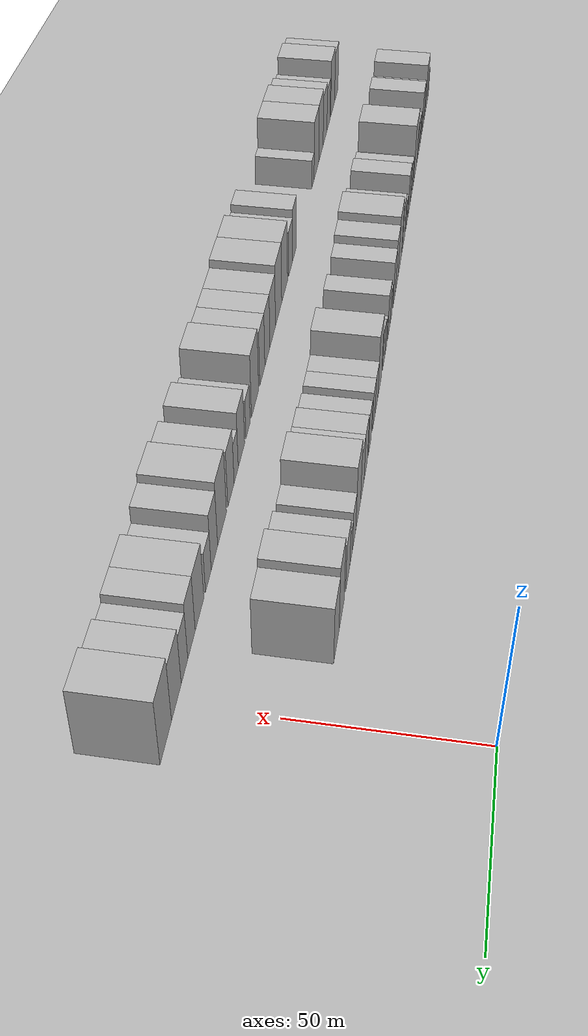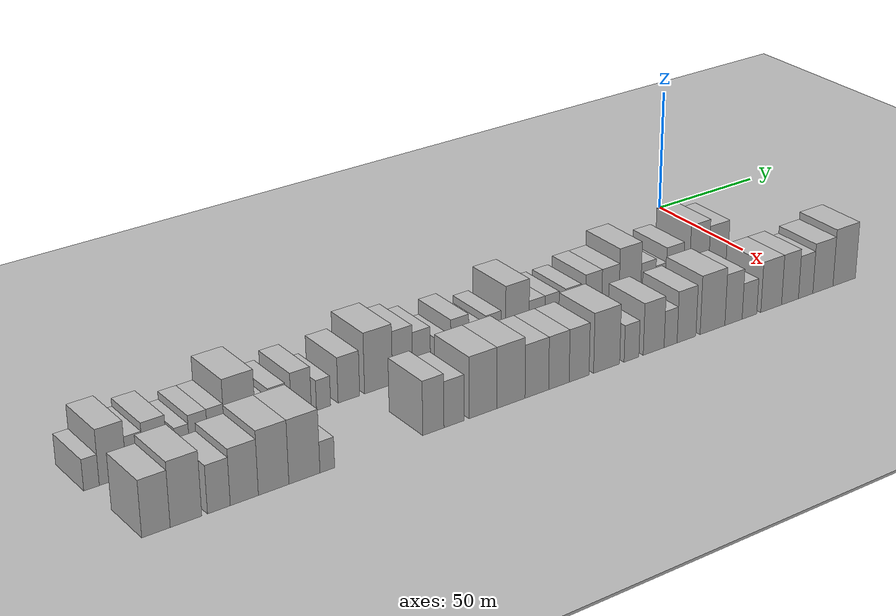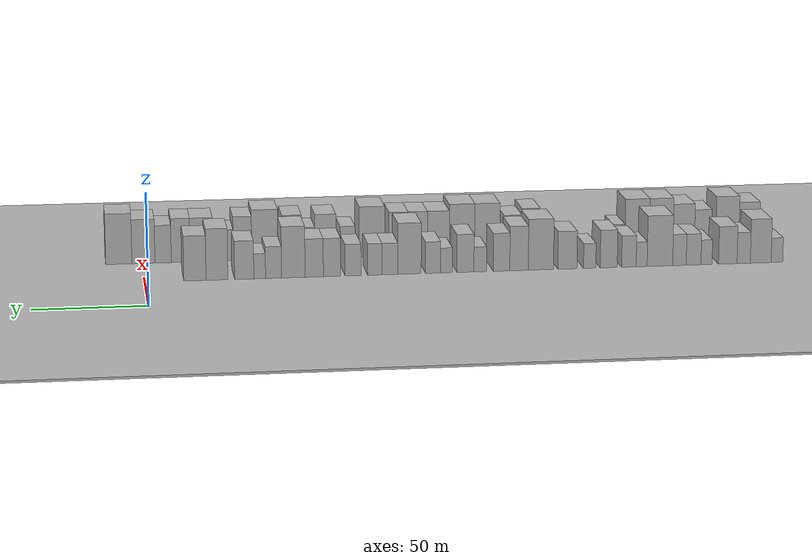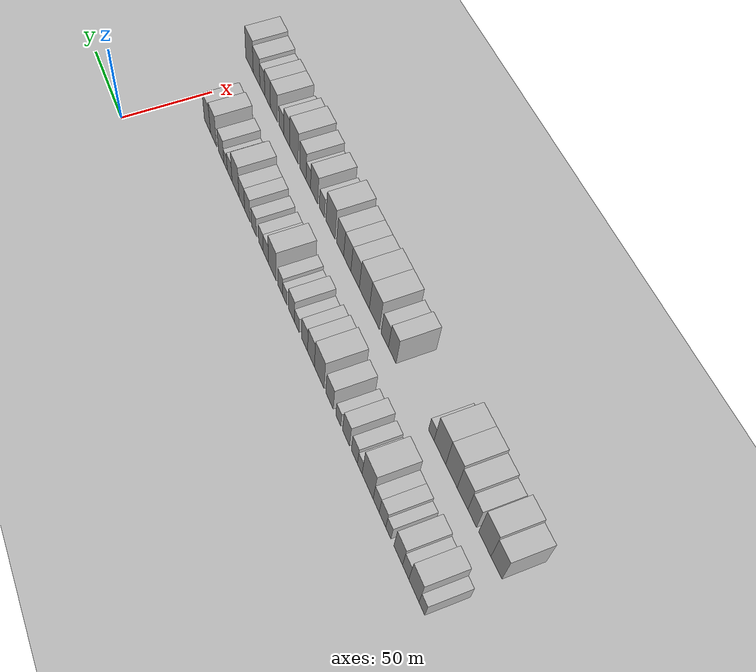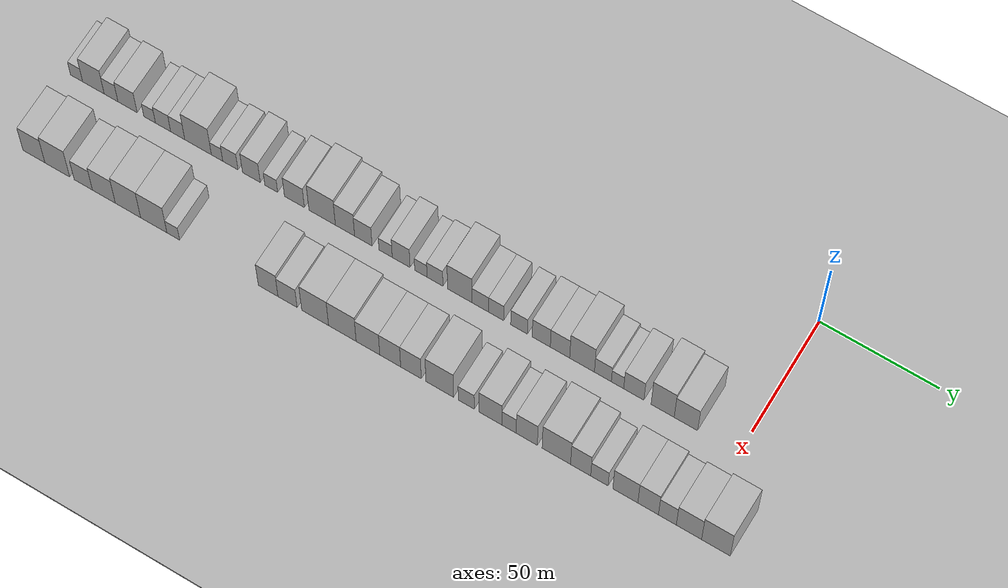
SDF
<sdf version="1.6">
 <world name="default">
  <include><name>ground_plane_1</name><uri>model://HANNAS_ground_plane</uri></include>
  <include>
   <name>ground_plane_2</name>
   <uri>model://HANNAS_ground_plane</uri>
   <pose>100 0 0  0 0 0</pose>
  </include>
  <model name="building_1">
   <static>1</static>
   <pose>50.0000 -287.2695 0 0.000000 0.000000 0.000000</pose>
   <link name="link">
    <pose>0 0 6.00 0 0 0</pose>
    <collision name="collision"><geometry><box><size>20.0000 5.4610 12.0000</size></box></geometry></collision>
    <visual name="visual">
     <cast_shadows>0</cast_shadows>
     <geometry><box><size>20.0000 5.4610 12.0000</size></box></geometry>
     <material>
      <script>
       <uri>model://HANNAS_wall/materials/scripts</uri>
       <uri>model://HANNAS_wall/materials/textures</uri>
       <name>vrc/HANNAS_wall</name>
      </script>
     </material>
    </visual>
   </link>
  </model>
  <model name="building_2">
   <static>1</static>
   <pose>50.0000 -279.6769 0 0.000000 0.000000 0.000000</pose>
   <link name="link">
    <pose>0 0 10.50 0 0 0</pose>
    <collision name="collision"><geometry><box><size>20.0000 9.7242 21.0000</size></box></geometry></collision>
    <visual name="visual">
     <cast_shadows>0</cast_shadows>
     <geometry><box><size>20.0000 9.7242 21.0000</size></box></geometry>
     <material>
      <script>
       <uri>model://HANNAS_wall/materials/scripts</uri>
       <uri>model://HANNAS_wall/materials/textures</uri>
       <name>vrc/HANNAS_wall</name>
      </script>
     </material>
    </visual>
   </link>
  </model>
  <model name="building_3">
   <static>1</static>
   <pose>50.0000 -271.7212 0 0.000000 0.000000 0.000000</pose>
   <link name="link">
    <pose>0 0 7.50 0 0 0</pose>
    <collision name="collision"><geometry><box><size>20.0000 6.1871 15.0000</size></box></geometry></collision>
    <visual name="visual">
     <cast_shadows>0</cast_shadows>
     <geometry><box><size>20.0000 6.1871 15.0000</size></box></geometry>
     <material>
      <script>
       <uri>model://HANNAS_wall/materials/scripts</uri>
       <uri>model://HANNAS_wall/materials/textures</uri>
       <name>vrc/HANNAS_wall</name>
      </script>
     </material>
    </visual>
   </link>
  </model>
  <model name="building_4">
   <static>1</static>
   <pose>50.0000 -264.3217 0 0.000000 0.000000 0.000000</pose>
   <link name="link">
    <pose>0 0 9.00 0 0 0</pose>
    <collision name="collision"><geometry><box><size>20.0000 8.6118 18.0000</size></box></geometry></collision>
    <visual name="visual">
     <cast_shadows>0</cast_shadows>
     <geometry><box><size>20.0000 8.6118 18.0000</size></box></geometry>
     <material>
      <script>
       <uri>model://HANNAS_wall/materials/scripts</uri>
       <uri>model://HANNAS_wall/materials/textures</uri>
       <name>vrc/HANNAS_wall</name>
      </script>
     </material>
    </visual>
   </link>
  </model>
  <model name="building_5">
   <static>1</static>
   <pose>50.0000 -254.4068 0 0.000000 0.000000 0.000000</pose>
   <link name="link">
    <pose>0 0 6.00 0 0 0</pose>
    <collision name="collision"><geometry><box><size>20.0000 5.2180 12.0000</size></box></geometry></collision>
    <visual name="visual">
     <cast_shadows>0</cast_shadows>
     <geometry><box><size>20.0000 5.2180 12.0000</size></box></geometry>
     <material>
      <script>
       <uri>model://HANNAS_wall/materials/scripts</uri>
       <uri>model://HANNAS_wall/materials/textures</uri>
       <name>vrc/HANNAS_wall</name>
      </script>
     </material>
    </visual>
   </link>
  </model>
  <model name="building_6">
   <static>1</static>
   <pose>50.0000 -248.3889 0 0.000000 0.000000 0.000000</pose>
   <link name="link">
    <pose>0 0 7.50 0 0 0</pose>
    <collision name="collision"><geometry><box><size>20.0000 6.8179 15.0000</size></box></geometry></collision>
    <visual name="visual">
     <cast_shadows>0</cast_shadows>
     <geometry><box><size>20.0000 6.8179 15.0000</size></box></geometry>
     <material>
      <script>
       <uri>model://HANNAS_wall/materials/scripts</uri>
       <uri>model://HANNAS_wall/materials/textures</uri>
       <name>vrc/HANNAS_wall</name>
      </script>
     </material>
    </visual>
   </link>
  </model>
  <model name="building_7">
   <static>1</static>
   <pose>50.0000 -241.8399 0 0.000000 0.000000 0.000000</pose>
   <link name="link">
    <pose>0 0 7.50 0 0 0</pose>
    <collision name="collision"><geometry><box><size>20.0000 6.2800 15.0000</size></box></geometry></collision>
    <visual name="visual">
     <cast_shadows>0</cast_shadows>
     <geometry><box><size>20.0000 6.2800 15.0000</size></box></geometry>
     <material>
      <script>
       <uri>model://HANNAS_wall/materials/scripts</uri>
       <uri>model://HANNAS_wall/materials/textures</uri>
       <name>vrc/HANNAS_wall</name>
      </script>
     </material>
    </visual>
   </link>
  </model>
  <model name="building_8">
   <static>1</static>
   <pose>50.0000 -232.7766 0 0.000000 0.000000 0.000000</pose>
   <link name="link">
    <pose>0 0 12.00 0 0 0</pose>
    <collision name="collision"><geometry><box><size>20.0000 11.8468 24.0000</size></box></geometry></collision>
    <visual name="visual">
     <cast_shadows>0</cast_shadows>
     <geometry><box><size>20.0000 11.8468 24.0000</size></box></geometry>
     <material>
      <script>
       <uri>model://HANNAS_wall/materials/scripts</uri>
       <uri>model://HANNAS_wall/materials/textures</uri>
       <name>vrc/HANNAS_wall</name>
      </script>
     </material>
    </visual>
   </link>
  </model>
  <model name="building_9">
   <static>1</static>
   <pose>50.0000 -224.3368 0 0.000000 0.000000 0.000000</pose>
   <link name="link">
    <pose>0 0 6.00 0 0 0</pose>
    <collision name="collision"><geometry><box><size>20.0000 5.0327 12.0000</size></box></geometry></collision>
    <visual name="visual">
     <cast_shadows>0</cast_shadows>
     <geometry><box><size>20.0000 5.0327 12.0000</size></box></geometry>
     <material>
      <script>
       <uri>model://HANNAS_wall/materials/scripts</uri>
       <uri>model://HANNAS_wall/materials/textures</uri>
       <name>vrc/HANNAS_wall</name>
      </script>
     </material>
    </visual>
   </link>
  </model>
  <model name="building_10">
   <static>1</static>
   <pose>50.0000 -218.4319 0 0.000000 0.000000 0.000000</pose>
   <link name="link">
    <pose>0 0 7.50 0 0 0</pose>
    <collision name="collision"><geometry><box><size>20.0000 6.7773 15.0000</size></box></geometry></collision>
    <visual name="visual">
     <cast_shadows>0</cast_shadows>
     <geometry><box><size>20.0000 6.7773 15.0000</size></box></geometry>
     <material>
      <script>
       <uri>model://HANNAS_wall/materials/scripts</uri>
       <uri>model://HANNAS_wall/materials/textures</uri>
       <name>vrc/HANNAS_wall</name>
      </script>
     </material>
    </visual>
   </link>
  </model>
  <model name="building_11">
   <static>1</static>
   <pose>50.0000 -209.1090 0 0.000000 0.000000 0.000000</pose>
   <link name="link">
    <pose>0 0 9.00 0 0 0</pose>
    <collision name="collision"><geometry><box><size>20.0000 7.8686 18.0000</size></box></geometry></collision>
    <visual name="visual">
     <cast_shadows>0</cast_shadows>
     <geometry><box><size>20.0000 7.8686 18.0000</size></box></geometry>
     <material>
      <script>
       <uri>model://HANNAS_wall/materials/scripts</uri>
       <uri>model://HANNAS_wall/materials/textures</uri>
       <name>vrc/HANNAS_wall</name>
      </script>
     </material>
    </visual>
   </link>
  </model>
  <model name="building_12">
   <static>1</static>
   <pose>50.0000 -200.3443 0 0.000000 0.000000 0.000000</pose>
   <link name="link">
    <pose>0 0 6.00 0 0 0</pose>
    <collision name="collision"><geometry><box><size>20.0000 5.6607 12.0000</size></box></geometry></collision>
    <visual name="visual">
     <cast_shadows>0</cast_shadows>
     <geometry><box><size>20.0000 5.6607 12.0000</size></box></geometry>
     <material>
      <script>
       <uri>model://HANNAS_wall/materials/scripts</uri>
       <uri>model://HANNAS_wall/materials/textures</uri>
       <name>vrc/HANNAS_wall</name>
      </script>
     </material>
    </visual>
   </link>
  </model>
  <model name="building_13">
   <static>1</static>
   <pose>50.0000 -190.1287 0 0.000000 0.000000 0.000000</pose>
   <link name="link">
    <pose>0 0 9.00 0 0 0</pose>
    <collision name="collision"><geometry><box><size>20.0000 8.7705 18.0000</size></box></geometry></collision>
    <visual name="visual">
     <cast_shadows>0</cast_shadows>
     <geometry><box><size>20.0000 8.7705 18.0000</size></box></geometry>
     <material>
      <script>
       <uri>model://HANNAS_wall/materials/scripts</uri>
       <uri>model://HANNAS_wall/materials/textures</uri>
       <name>vrc/HANNAS_wall</name>
      </script>
     </material>
    </visual>
   </link>
  </model>
  <model name="building_14">
   <static>1</static>
   <pose>50.0000 -177.9583 0 0.000000 0.000000 0.000000</pose>
   <link name="link">
    <pose>0 0 12.00 0 0 0</pose>
    <collision name="collision"><geometry><box><size>20.0000 11.5704 24.0000</size></box></geometry></collision>
    <visual name="visual">
     <cast_shadows>0</cast_shadows>
     <geometry><box><size>20.0000 11.5704 24.0000</size></box></geometry>
     <material>
      <script>
       <uri>model://HANNAS_wall/materials/scripts</uri>
       <uri>model://HANNAS_wall/materials/textures</uri>
       <name>vrc/HANNAS_wall</name>
      </script>
     </material>
    </visual>
   </link>
  </model>
  <model name="building_15">
   <static>1</static>
   <pose>50.0000 -167.9573 0 0.000000 0.000000 0.000000</pose>
   <link name="link">
    <pose>0 0 10.50 0 0 0</pose>
    <collision name="collision"><geometry><box><size>20.0000 8.4315 21.0000</size></box></geometry></collision>
    <visual name="visual">
     <cast_shadows>0</cast_shadows>
     <geometry><box><size>20.0000 8.4315 21.0000</size></box></geometry>
     <material>
      <script>
       <uri>model://HANNAS_wall/materials/scripts</uri>
       <uri>model://HANNAS_wall/materials/textures</uri>
       <name>vrc/HANNAS_wall</name>
      </script>
     </material>
    </visual>
   </link>
  </model>
  <model name="building_16">
   <static>1</static>
   <pose>50.0000 -159.9387 0 0.000000 0.000000 0.000000</pose>
   <link name="link">
    <pose>0 0 9.00 0 0 0</pose>
    <collision name="collision"><geometry><box><size>20.0000 7.6058 18.0000</size></box></geometry></collision>
    <visual name="visual">
     <cast_shadows>0</cast_shadows>
     <geometry><box><size>20.0000 7.6058 18.0000</size></box></geometry>
     <material>
      <script>
       <uri>model://HANNAS_wall/materials/scripts</uri>
       <uri>model://HANNAS_wall/materials/textures</uri>
       <name>vrc/HANNAS_wall</name>
      </script>
     </material>
    </visual>
   </link>
  </model>
  <model name="building_17">
   <static>1</static>
   <pose>50.0000 -150.2463 0 0.000000 0.000000 0.000000</pose>
   <link name="link">
    <pose>0 0 6.00 0 0 0</pose>
    <collision name="collision"><geometry><box><size>20.0000 5.7791 12.0000</size></box></geometry></collision>
    <visual name="visual">
     <cast_shadows>0</cast_shadows>
     <geometry><box><size>20.0000 5.7791 12.0000</size></box></geometry>
     <material>
      <script>
       <uri>model://HANNAS_wall/materials/scripts</uri>
       <uri>model://HANNAS_wall/materials/textures</uri>
       <name>vrc/HANNAS_wall</name>
      </script>
     </material>
    </visual>
   </link>
  </model>
  <model name="building_18">
   <static>1</static>
   <pose>50.0000 -143.4901 0 0.000000 0.000000 0.000000</pose>
   <link name="link">
    <pose>0 0 9.00 0 0 0</pose>
    <collision name="collision"><geometry><box><size>20.0000 7.7331 18.0000</size></box></geometry></collision>
    <visual name="visual">
     <cast_shadows>0</cast_shadows>
     <geometry><box><size>20.0000 7.7331 18.0000</size></box></geometry>
     <material>
      <script>
       <uri>model://HANNAS_wall/materials/scripts</uri>
       <uri>model://HANNAS_wall/materials/textures</uri>
       <name>vrc/HANNAS_wall</name>
      </script>
     </material>
    </visual>
   </link>
  </model>
  <model name="building_19">
   <static>1</static>
   <pose>50.0000 -134.9416 0 0.000000 0.000000 0.000000</pose>
   <link name="link">
    <pose>0 0 6.00 0 0 0</pose>
    <collision name="collision"><geometry><box><size>20.0000 5.3639 12.0000</size></box></geometry></collision>
    <visual name="visual">
     <cast_shadows>0</cast_shadows>
     <geometry><box><size>20.0000 5.3639 12.0000</size></box></geometry>
     <material>
      <script>
       <uri>model://HANNAS_wall/materials/scripts</uri>
       <uri>model://HANNAS_wall/materials/textures</uri>
       <name>vrc/HANNAS_wall</name>
      </script>
     </material>
    </visual>
   </link>
  </model>
  <model name="building_20">
   <static>1</static>
   <pose>50.0000 -128.8248 0 0.000000 0.000000 0.000000</pose>
   <link name="link">
    <pose>0 0 7.50 0 0 0</pose>
    <collision name="collision"><geometry><box><size>20.0000 6.8697 15.0000</size></box></geometry></collision>
    <visual name="visual">
     <cast_shadows>0</cast_shadows>
     <geometry><box><size>20.0000 6.8697 15.0000</size></box></geometry>
     <material>
      <script>
       <uri>model://HANNAS_wall/materials/scripts</uri>
       <uri>model://HANNAS_wall/materials/textures</uri>
       <name>vrc/HANNAS_wall</name>
      </script>
     </material>
    </visual>
   </link>
  </model>
  <model name="building_21">
   <static>1</static>
   <pose>50.0000 -118.1324 0 0.000000 0.000000 0.000000</pose>
   <link name="link">
    <pose>0 0 12.00 0 0 0</pose>
    <collision name="collision"><geometry><box><size>20.0000 10.5152 24.0000</size></box></geometry></collision>
    <visual name="visual">
     <cast_shadows>0</cast_shadows>
     <geometry><box><size>20.0000 10.5152 24.0000</size></box></geometry>
     <material>
      <script>
       <uri>model://HANNAS_wall/materials/scripts</uri>
       <uri>model://HANNAS_wall/materials/textures</uri>
       <name>vrc/HANNAS_wall</name>
      </script>
     </material>
    </visual>
   </link>
  </model>
  <model name="building_22">
   <static>1</static>
   <pose>50.0000 -109.2981 0 0.000000 0.000000 0.000000</pose>
   <link name="link">
    <pose>0 0 7.50 0 0 0</pose>
    <collision name="collision"><geometry><box><size>20.0000 7.1534 15.0000</size></box></geometry></collision>
    <visual name="visual">
     <cast_shadows>0</cast_shadows>
     <geometry><box><size>20.0000 7.1534 15.0000</size></box></geometry>
     <material>
      <script>
       <uri>model://HANNAS_wall/materials/scripts</uri>
       <uri>model://HANNAS_wall/materials/textures</uri>
       <name>vrc/HANNAS_wall</name>
      </script>
     </material>
    </visual>
   </link>
  </model>
  <model name="building_23">
   <static>1</static>
   <pose>50.0000 -102.4852 0 0.000000 0.000000 0.000000</pose>
   <link name="link">
    <pose>0 0 7.50 0 0 0</pose>
    <collision name="collision"><geometry><box><size>20.0000 6.4725 15.0000</size></box></geometry></collision>
    <visual name="visual">
     <cast_shadows>0</cast_shadows>
     <geometry><box><size>20.0000 6.4725 15.0000</size></box></geometry>
     <material>
      <script>
       <uri>model://HANNAS_wall/materials/scripts</uri>
       <uri>model://HANNAS_wall/materials/textures</uri>
       <name>vrc/HANNAS_wall</name>
      </script>
     </material>
    </visual>
   </link>
  </model>
  <model name="building_24">
   <static>1</static>
   <pose>50.0000 -92.6460 0 0.000000 0.000000 0.000000</pose>
   <link name="link">
    <pose>0 0 7.50 0 0 0</pose>
    <collision name="collision"><geometry><box><size>20.0000 7.2058 15.0000</size></box></geometry></collision>
    <visual name="visual">
     <cast_shadows>0</cast_shadows>
     <geometry><box><size>20.0000 7.2058 15.0000</size></box></geometry>
     <material>
      <script>
       <uri>model://HANNAS_wall/materials/scripts</uri>
       <uri>model://HANNAS_wall/materials/textures</uri>
       <name>vrc/HANNAS_wall</name>
      </script>
     </material>
    </visual>
   </link>
  </model>
  <model name="building_25">
   <static>1</static>
   <pose>50.0000 -83.1704 0 0.000000 0.000000 0.000000</pose>
   <link name="link">
    <pose>0 0 9.00 0 0 0</pose>
    <collision name="collision"><geometry><box><size>20.0000 7.7455 18.0000</size></box></geometry></collision>
    <visual name="visual">
     <cast_shadows>0</cast_shadows>
     <geometry><box><size>20.0000 7.7455 18.0000</size></box></geometry>
     <material>
      <script>
       <uri>model://HANNAS_wall/materials/scripts</uri>
       <uri>model://HANNAS_wall/materials/textures</uri>
       <name>vrc/HANNAS_wall</name>
      </script>
     </material>
    </visual>
   </link>
  </model>
  <model name="building_26">
   <static>1</static>
   <pose>50.0000 -75.1725 0 0.000000 0.000000 0.000000</pose>
   <link name="link">
    <pose>0 0 9.00 0 0 0</pose>
    <collision name="collision"><geometry><box><size>20.0000 8.2501 18.0000</size></box></geometry></collision>
    <visual name="visual">
     <cast_shadows>0</cast_shadows>
     <geometry><box><size>20.0000 8.2501 18.0000</size></box></geometry>
     <material>
      <script>
       <uri>model://HANNAS_wall/materials/scripts</uri>
       <uri>model://HANNAS_wall/materials/textures</uri>
       <name>vrc/HANNAS_wall</name>
      </script>
     </material>
    </visual>
   </link>
  </model>
  <model name="building_27">
   <static>1</static>
   <pose>50.0000 -65.7889 0 0.000000 0.000000 0.000000</pose>
   <link name="link">
    <pose>0 0 12.00 0 0 0</pose>
    <collision name="collision"><geometry><box><size>20.0000 10.5172 24.0000</size></box></geometry></collision>
    <visual name="visual">
     <cast_shadows>0</cast_shadows>
     <geometry><box><size>20.0000 10.5172 24.0000</size></box></geometry>
     <material>
      <script>
       <uri>model://HANNAS_wall/materials/scripts</uri>
       <uri>model://HANNAS_wall/materials/textures</uri>
       <name>vrc/HANNAS_wall</name>
      </script>
     </material>
    </visual>
   </link>
  </model>
  <model name="building_28">
   <static>1</static>
   <pose>50.0000 -56.9479 0 0.000000 0.000000 0.000000</pose>
   <link name="link">
    <pose>0 0 7.50 0 0 0</pose>
    <collision name="collision"><geometry><box><size>20.0000 7.1647 15.0000</size></box></geometry></collision>
    <visual name="visual">
     <cast_shadows>0</cast_shadows>
     <geometry><box><size>20.0000 7.1647 15.0000</size></box></geometry>
     <material>
      <script>
       <uri>model://HANNAS_wall/materials/scripts</uri>
       <uri>model://HANNAS_wall/materials/textures</uri>
       <name>vrc/HANNAS_wall</name>
      </script>
     </material>
    </visual>
   </link>
  </model>
  <model name="building_29">
   <static>1</static>
   <pose>50.0000 -50.7540 0 0.000000 0.000000 0.000000</pose>
   <link name="link">
    <pose>0 0 6.00 0 0 0</pose>
    <collision name="collision"><geometry><box><size>20.0000 5.2231 12.0000</size></box></geometry></collision>
    <visual name="visual">
     <cast_shadows>0</cast_shadows>
     <geometry><box><size>20.0000 5.2231 12.0000</size></box></geometry>
     <material>
      <script>
       <uri>model://HANNAS_wall/materials/scripts</uri>
       <uri>model://HANNAS_wall/materials/textures</uri>
       <name>vrc/HANNAS_wall</name>
      </script>
     </material>
    </visual>
   </link>
  </model>
  <model name="building_30">
   <static>1</static>
   <pose>50.0000 -43.8688 0 0.000000 0.000000 0.000000</pose>
   <link name="link">
    <pose>0 0 9.00 0 0 0</pose>
    <collision name="collision"><geometry><box><size>20.0000 8.5474 18.0000</size></box></geometry></collision>
    <visual name="visual">
     <cast_shadows>0</cast_shadows>
     <geometry><box><size>20.0000 8.5474 18.0000</size></box></geometry>
     <material>
      <script>
       <uri>model://HANNAS_wall/materials/scripts</uri>
       <uri>model://HANNAS_wall/materials/textures</uri>
       <name>vrc/HANNAS_wall</name>
      </script>
     </material>
    </visual>
   </link>
  </model>
  <model name="building_31">
   <static>1</static>
   <pose>50.0000 -31.7296 0 0.000000 0.000000 0.000000</pose>
   <link name="link">
    <pose>0 0 12.00 0 0 0</pose>
    <collision name="collision"><geometry><box><size>20.0000 9.7308 24.0000</size></box></geometry></collision>
    <visual name="visual">
     <cast_shadows>0</cast_shadows>
     <geometry><box><size>20.0000 9.7308 24.0000</size></box></geometry>
     <material>
      <script>
       <uri>model://HANNAS_wall/materials/scripts</uri>
       <uri>model://HANNAS_wall/materials/textures</uri>
       <name>vrc/HANNAS_wall</name>
      </script>
     </material>
    </visual>
   </link>
  </model>
  <model name="building_32">
   <static>1</static>
   <pose>50.0000 -21.9422 0 0.000000 0.000000 0.000000</pose>
   <link name="link">
    <pose>0 0 10.50 0 0 0</pose>
    <collision name="collision"><geometry><box><size>20.0000 9.8439 21.0000</size></box></geometry></collision>
    <visual name="visual">
     <cast_shadows>0</cast_shadows>
     <geometry><box><size>20.0000 9.8439 21.0000</size></box></geometry>
     <material>
      <script>
       <uri>model://HANNAS_wall/materials/scripts</uri>
       <uri>model://HANNAS_wall/materials/textures</uri>
       <name>vrc/HANNAS_wall</name>
      </script>
     </material>
    </visual>
   </link>
  </model>
  <model name="building_64">
   <static>1</static>
   <pose>85.0000 -283.0768 0 0.000000 0.000000 0.000000</pose>
   <link name="link">
    <pose>0 0 10.50 0 0 0</pose>
    <collision name="collision"><geometry><box><size>20.0000 9.8464 21.0000</size></box></geometry></collision>
    <visual name="visual">
     <cast_shadows>0</cast_shadows>
     <geometry><box><size>20.0000 9.8464 21.0000</size></box></geometry>
     <material>
      <script>
       <uri>model://HANNAS_wall/materials/scripts</uri>
       <uri>model://HANNAS_wall/materials/textures</uri>
       <name>vrc/HANNAS_wall</name>
      </script>
     </material>
    </visual>
   </link>
  </model>
  <model name="building_65">
   <static>1</static>
   <pose>85.0000 -272.6140 0 0.000000 0.000000 0.000000</pose>
   <link name="link">
    <pose>0 0 12.00 0 0 0</pose>
    <collision name="collision"><geometry><box><size>20.0000 11.0792 24.0000</size></box></geometry></collision>
    <visual name="visual">
     <cast_shadows>0</cast_shadows>
     <geometry><box><size>20.0000 11.0792 24.0000</size></box></geometry>
     <material>
      <script>
       <uri>model://HANNAS_wall/materials/scripts</uri>
       <uri>model://HANNAS_wall/materials/textures</uri>
       <name>vrc/HANNAS_wall</name>
      </script>
     </material>
    </visual>
   </link>
  </model>
  <model name="building_66">
   <static>1</static>
   <pose>85.0000 -260.9999 0 0.000000 0.000000 0.000000</pose>
   <link name="link">
    <pose>0 0 9.00 0 0 0</pose>
    <collision name="collision"><geometry><box><size>20.0000 8.1489 18.0000</size></box></geometry></collision>
    <visual name="visual">
     <cast_shadows>0</cast_shadows>
     <geometry><box><size>20.0000 8.1489 18.0000</size></box></geometry>
     <material>
      <script>
       <uri>model://HANNAS_wall/materials/scripts</uri>
       <uri>model://HANNAS_wall/materials/textures</uri>
       <name>vrc/HANNAS_wall</name>
      </script>
     </material>
    </visual>
   </link>
  </model>
  <model name="building_67">
   <static>1</static>
   <pose>85.0000 -251.8314 0 0.000000 0.000000 0.000000</pose>
   <link name="link">
    <pose>0 0 10.50 0 0 0</pose>
    <collision name="collision"><geometry><box><size>20.0000 10.1883 21.0000</size></box></geometry></collision>
    <visual name="visual">
     <cast_shadows>0</cast_shadows>
     <geometry><box><size>20.0000 10.1883 21.0000</size></box></geometry>
     <material>
      <script>
       <uri>model://HANNAS_wall/materials/scripts</uri>
       <uri>model://HANNAS_wall/materials/textures</uri>
       <name>vrc/HANNAS_wall</name>
      </script>
     </material>
    </visual>
   </link>
  </model>
  <model name="building_68">
   <static>1</static>
   <pose>85.0000 -241.1144 0 0.000000 0.000000 0.000000</pose>
   <link name="link">
    <pose>0 0 12.00 0 0 0</pose>
    <collision name="collision"><geometry><box><size>20.0000 11.2458 24.0000</size></box></geometry></collision>
    <visual name="visual">
     <cast_shadows>0</cast_shadows>
     <geometry><box><size>20.0000 11.2458 24.0000</size></box></geometry>
     <material>
      <script>
       <uri>model://HANNAS_wall/materials/scripts</uri>
       <uri>model://HANNAS_wall/materials/textures</uri>
       <name>vrc/HANNAS_wall</name>
      </script>
     </material>
    </visual>
   </link>
  </model>
  <model name="building_69">
   <static>1</static>
   <pose>85.0000 -229.6658 0 0.000000 0.000000 0.000000</pose>
   <link name="link">
    <pose>0 0 12.00 0 0 0</pose>
    <collision name="collision"><geometry><box><size>20.0000 11.6513 24.0000</size></box></geometry></collision>
    <visual name="visual">
     <cast_shadows>0</cast_shadows>
     <geometry><box><size>20.0000 11.6513 24.0000</size></box></geometry>
     <material>
      <script>
       <uri>model://HANNAS_wall/materials/scripts</uri>
       <uri>model://HANNAS_wall/materials/textures</uri>
       <name>vrc/HANNAS_wall</name>
      </script>
     </material>
    </visual>
   </link>
  </model>
  <model name="building_70">
   <static>1</static>
   <pose>85.0000 -221.0425 0 0.000000 0.000000 0.000000</pose>
   <link name="link">
    <pose>0 0 6.00 0 0 0</pose>
    <collision name="collision"><geometry><box><size>20.0000 5.5953 12.0000</size></box></geometry></collision>
    <visual name="visual">
     <cast_shadows>0</cast_shadows>
     <geometry><box><size>20.0000 5.5953 12.0000</size></box></geometry>
     <material>
      <script>
       <uri>model://HANNAS_wall/materials/scripts</uri>
       <uri>model://HANNAS_wall/materials/textures</uri>
       <name>vrc/HANNAS_wall</name>
      </script>
     </material>
    </visual>
   </link>
  </model>
  <model name="building_71">
   <static>1</static>
   <pose>85.0000 -179.3835 0 0.000000 0.000000 0.000000</pose>
   <link name="link">
    <pose>0 0 10.50 0 0 0</pose>
    <collision name="collision"><geometry><box><size>20.0000 8.5742 21.0000</size></box></geometry></collision>
    <visual name="visual">
     <cast_shadows>0</cast_shadows>
     <geometry><box><size>20.0000 8.5742 21.0000</size></box></geometry>
     <material>
      <script>
       <uri>model://HANNAS_wall/materials/scripts</uri>
       <uri>model://HANNAS_wall/materials/textures</uri>
       <name>vrc/HANNAS_wall</name>
      </script>
     </material>
    </visual>
   </link>
  </model>
  <model name="building_72">
   <static>1</static>
   <pose>85.0000 -170.9358 0 0.000000 0.000000 0.000000</pose>
   <link name="link">
    <pose>0 0 9.00 0 0 0</pose>
    <collision name="collision"><geometry><box><size>20.0000 8.3212 18.0000</size></box></geometry></collision>
    <visual name="visual">
     <cast_shadows>0</cast_shadows>
     <geometry><box><size>20.0000 8.3212 18.0000</size></box></geometry>
     <material>
      <script>
       <uri>model://HANNAS_wall/materials/scripts</uri>
       <uri>model://HANNAS_wall/materials/textures</uri>
       <name>vrc/HANNAS_wall</name>
      </script>
     </material>
    </visual>
   </link>
  </model>
  <model name="building_73">
   <static>1</static>
   <pose>85.0000 -158.9491 0 0.000000 0.000000 0.000000</pose>
   <link name="link">
    <pose>0 0 12.00 0 0 0</pose>
    <collision name="collision"><geometry><box><size>20.0000 11.6521 24.0000</size></box></geometry></collision>
    <visual name="visual">
     <cast_shadows>0</cast_shadows>
     <geometry><box><size>20.0000 11.6521 24.0000</size></box></geometry>
     <material>
      <script>
       <uri>model://HANNAS_wall/materials/scripts</uri>
       <uri>model://HANNAS_wall/materials/textures</uri>
       <name>vrc/HANNAS_wall</name>
      </script>
     </material>
    </visual>
   </link>
  </model>
  <model name="building_74">
   <static>1</static>
   <pose>85.0000 -147.1562 0 0.000000 0.000000 0.000000</pose>
   <link name="link">
    <pose>0 0 12.00 0 0 0</pose>
    <collision name="collision"><geometry><box><size>20.0000 11.9338 24.0000</size></box></geometry></collision>
    <visual name="visual">
     <cast_shadows>0</cast_shadows>
     <geometry><box><size>20.0000 11.9338 24.0000</size></box></geometry>
     <material>
      <script>
       <uri>model://HANNAS_wall/materials/scripts</uri>
       <uri>model://HANNAS_wall/materials/textures</uri>
       <name>vrc/HANNAS_wall</name>
      </script>
     </material>
    </visual>
   </link>
  </model>
  <model name="building_75">
   <static>1</static>
   <pose>85.0000 -136.0924 0 0.000000 0.000000 0.000000</pose>
   <link name="link">
    <pose>0 0 10.50 0 0 0</pose>
    <collision name="collision"><geometry><box><size>20.0000 10.1938 21.0000</size></box></geometry></collision>
    <visual name="visual">
     <cast_shadows>0</cast_shadows>
     <geometry><box><size>20.0000 10.1938 21.0000</size></box></geometry>
     <material>
      <script>
       <uri>model://HANNAS_wall/materials/scripts</uri>
       <uri>model://HANNAS_wall/materials/textures</uri>
       <name>vrc/HANNAS_wall</name>
      </script>
     </material>
    </visual>
   </link>
  </model>
  <model name="building_76">
   <static>1</static>
   <pose>85.0000 -126.5070 0 0.000000 0.000000 0.000000</pose>
   <link name="link">
    <pose>0 0 10.50 0 0 0</pose>
    <collision name="collision"><geometry><box><size>20.0000 8.9769 21.0000</size></box></geometry></collision>
    <visual name="visual">
     <cast_shadows>0</cast_shadows>
     <geometry><box><size>20.0000 8.9769 21.0000</size></box></geometry>
     <material>
      <script>
       <uri>model://HANNAS_wall/materials/scripts</uri>
       <uri>model://HANNAS_wall/materials/textures</uri>
       <name>vrc/HANNAS_wall</name>
      </script>
     </material>
    </visual>
   </link>
  </model>
  <model name="building_77">
   <static>1</static>
   <pose>85.0000 -117.5985 0 0.000000 0.000000 0.000000</pose>
   <link name="link">
    <pose>0 0 10.50 0 0 0</pose>
    <collision name="collision"><geometry><box><size>20.0000 8.8401 21.0000</size></box></geometry></collision>
    <visual name="visual">
     <cast_shadows>0</cast_shadows>
     <geometry><box><size>20.0000 8.8401 21.0000</size></box></geometry>
     <material>
      <script>
       <uri>model://HANNAS_wall/materials/scripts</uri>
       <uri>model://HANNAS_wall/materials/textures</uri>
       <name>vrc/HANNAS_wall</name>
      </script>
     </material>
    </visual>
   </link>
  </model>
  <model name="building_78">
   <static>1</static>
   <pose>85.0000 -105.2745 0 0.000000 0.000000 0.000000</pose>
   <link name="link">
    <pose>0 0 12.00 0 0 0</pose>
    <collision name="collision"><geometry><box><size>20.0000 11.8079 24.0000</size></box></geometry></collision>
    <visual name="visual">
     <cast_shadows>0</cast_shadows>
     <geometry><box><size>20.0000 11.8079 24.0000</size></box></geometry>
     <material>
      <script>
       <uri>model://HANNAS_wall/materials/scripts</uri>
       <uri>model://HANNAS_wall/materials/textures</uri>
       <name>vrc/HANNAS_wall</name>
      </script>
     </material>
    </visual>
   </link>
  </model>
  <model name="building_79">
   <static>1</static>
   <pose>85.0000 -93.9713 0 0.000000 0.000000 0.000000</pose>
   <link name="link">
    <pose>0 0 7.50 0 0 0</pose>
    <collision name="collision"><geometry><box><size>20.0000 6.7985 15.0000</size></box></geometry></collision>
    <visual name="visual">
     <cast_shadows>0</cast_shadows>
     <geometry><box><size>20.0000 6.7985 15.0000</size></box></geometry>
     <material>
      <script>
       <uri>model://HANNAS_wall/materials/scripts</uri>
       <uri>model://HANNAS_wall/materials/textures</uri>
       <name>vrc/HANNAS_wall</name>
      </script>
     </material>
    </visual>
   </link>
  </model>
  <model name="building_80">
   <static>1</static>
   <pose>85.0000 -83.7237 0 0.000000 0.000000 0.000000</pose>
   <link name="link">
    <pose>0 0 10.50 0 0 0</pose>
    <collision name="collision"><geometry><box><size>20.0000 9.6968 21.0000</size></box></geometry></collision>
    <visual name="visual">
     <cast_shadows>0</cast_shadows>
     <geometry><box><size>20.0000 9.6968 21.0000</size></box></geometry>
     <material>
      <script>
       <uri>model://HANNAS_wall/materials/scripts</uri>
       <uri>model://HANNAS_wall/materials/textures</uri>
       <name>vrc/HANNAS_wall</name>
      </script>
     </material>
    </visual>
   </link>
  </model>
  <model name="building_81">
   <static>1</static>
   <pose>85.0000 -75.8164 0 0.000000 0.000000 0.000000</pose>
   <link name="link">
    <pose>0 0 7.50 0 0 0</pose>
    <collision name="collision"><geometry><box><size>20.0000 6.1177 15.0000</size></box></geometry></collision>
    <visual name="visual">
     <cast_shadows>0</cast_shadows>
     <geometry><box><size>20.0000 6.1177 15.0000</size></box></geometry>
     <material>
      <script>
       <uri>model://HANNAS_wall/materials/scripts</uri>
       <uri>model://HANNAS_wall/materials/textures</uri>
       <name>vrc/HANNAS_wall</name>
      </script>
     </material>
    </visual>
   </link>
  </model>
  <model name="building_82">
   <static>1</static>
   <pose>85.0000 -68.2785 0 0.000000 0.000000 0.000000</pose>
   <link name="link">
    <pose>0 0 10.50 0 0 0</pose>
    <collision name="collision"><geometry><box><size>20.0000 8.9581 21.0000</size></box></geometry></collision>
    <visual name="visual">
     <cast_shadows>0</cast_shadows>
     <geometry><box><size>20.0000 8.9581 21.0000</size></box></geometry>
     <material>
      <script>
       <uri>model://HANNAS_wall/materials/scripts</uri>
       <uri>model://HANNAS_wall/materials/textures</uri>
       <name>vrc/HANNAS_wall</name>
      </script>
     </material>
    </visual>
   </link>
  </model>
  <model name="building_83">
   <static>1</static>
   <pose>85.0000 -55.8044 0 0.000000 0.000000 0.000000</pose>
   <link name="link">
    <pose>0 0 12.00 0 0 0</pose>
    <collision name="collision"><geometry><box><size>20.0000 11.9902 24.0000</size></box></geometry></collision>
    <visual name="visual">
     <cast_shadows>0</cast_shadows>
     <geometry><box><size>20.0000 11.9902 24.0000</size></box></geometry>
     <material>
      <script>
       <uri>model://HANNAS_wall/materials/scripts</uri>
       <uri>model://HANNAS_wall/materials/textures</uri>
       <name>vrc/HANNAS_wall</name>
      </script>
     </material>
    </visual>
   </link>
  </model>
  <model name="building_84">
   <static>1</static>
   <pose>85.0000 -45.5765 0 0.000000 0.000000 0.000000</pose>
   <link name="link">
    <pose>0 0 10.50 0 0 0</pose>
    <collision name="collision"><geometry><box><size>20.0000 8.4657 21.0000</size></box></geometry></collision>
    <visual name="visual">
     <cast_shadows>0</cast_shadows>
     <geometry><box><size>20.0000 8.4657 21.0000</size></box></geometry>
     <material>
      <script>
       <uri>model://HANNAS_wall/materials/scripts</uri>
       <uri>model://HANNAS_wall/materials/textures</uri>
       <name>vrc/HANNAS_wall</name>
      </script>
     </material>
    </visual>
   </link>
  </model>
  <model name="building_85">
   <static>1</static>
   <pose>85.0000 -37.7026 0 0.000000 0.000000 0.000000</pose>
   <link name="link">
    <pose>0 0 7.50 0 0 0</pose>
    <collision name="collision"><geometry><box><size>20.0000 7.2822 15.0000</size></box></geometry></collision>
    <visual name="visual">
     <cast_shadows>0</cast_shadows>
     <geometry><box><size>20.0000 7.2822 15.0000</size></box></geometry>
     <material>
      <script>
       <uri>model://HANNAS_wall/materials/scripts</uri>
       <uri>model://HANNAS_wall/materials/textures</uri>
       <name>vrc/HANNAS_wall</name>
      </script>
     </material>
    </visual>
   </link>
  </model>
  <model name="building_86">
   <static>1</static>
   <pose>85.0000 -26.8328 0 0.000000 0.000000 0.000000</pose>
   <link name="link">
    <pose>0 0 10.50 0 0 0</pose>
    <collision name="collision"><geometry><box><size>20.0000 10.4574 21.0000</size></box></geometry></collision>
    <visual name="visual">
     <cast_shadows>0</cast_shadows>
     <geometry><box><size>20.0000 10.4574 21.0000</size></box></geometry>
     <material>
      <script>
       <uri>model://HANNAS_wall/materials/scripts</uri>
       <uri>model://HANNAS_wall/materials/textures</uri>
       <name>vrc/HANNAS_wall</name>
      </script>
     </material>
    </visual>
   </link>
  </model>
  <model name="building_87">
   <static>1</static>
   <pose>85.0000 -17.3071 0 0.000000 0.000000 0.000000</pose>
   <link name="link">
    <pose>0 0 10.50 0 0 0</pose>
    <collision name="collision"><geometry><box><size>20.0000 8.5941 21.0000</size></box></geometry></collision>
    <visual name="visual">
     <cast_shadows>0</cast_shadows>
     <geometry><box><size>20.0000 8.5941 21.0000</size></box></geometry>
     <material>
      <script>
       <uri>model://HANNAS_wall/materials/scripts</uri>
       <uri>model://HANNAS_wall/materials/textures</uri>
       <name>vrc/HANNAS_wall</name>
      </script>
     </material>
    </visual>
   </link>
  </model>
  <model name="building_88">
   <static>1</static>
   <pose>85.0000 -9.3071 0 0.000000 0.000000 0.000000</pose>
   <link name="link">
    <pose>0 0 9.00 0 0 0</pose>
    <collision name="collision"><geometry><box><size>20.0000 7.4059 18.0000</size></box></geometry></collision>
    <visual name="visual">
     <cast_shadows>0</cast_shadows>
     <geometry><box><size>20.0000 7.4059 18.0000</size></box></geometry>
     <material>
      <script>
       <uri>model://HANNAS_wall/materials/scripts</uri>
       <uri>model://HANNAS_wall/materials/textures</uri>
       <name>vrc/HANNAS_wall</name>
      </script>
     </material>
    </visual>
   </link>
  </model>
  <model name="building_89">
   <static>1</static>
   <pose>85.0000 -0.3641 0 0.000000 0.000000 0.000000</pose>
   <link name="link">
    <pose>0 0 10.50 0 0 0</pose>
    <collision name="collision"><geometry><box><size>20.0000 10.4802 21.0000</size></box></geometry></collision>
    <visual name="visual">
     <cast_shadows>0</cast_shadows>
     <geometry><box><size>20.0000 10.4802 21.0000</size></box></geometry>
     <material>
      <script>
       <uri>model://HANNAS_wall/materials/scripts</uri>
       <uri>model://HANNAS_wall/materials/textures</uri>
       <name>vrc/HANNAS_wall</name>
      </script>
     </material>
    </visual>
   </link>
  </model>
  <model name="building_90">
   <static>1</static>
   <pose>85.0000 10.8096 0 0.000000 0.000000 0.000000</pose>
   <link name="link">
    <pose>0 0 12.00 0 0 0</pose>
    <collision name="collision"><geometry><box><size>20.0000 11.8672 24.0000</size></box></geometry></collision>
    <visual name="visual">
     <cast_shadows>0</cast_shadows>
     <geometry><box><size>20.0000 11.8672 24.0000</size></box></geometry>
     <material>
      <script>
       <uri>model://HANNAS_wall/materials/scripts</uri>
       <uri>model://HANNAS_wall/materials/textures</uri>
       <name>vrc/HANNAS_wall</name>
      </script>
     </material>
    </visual>
   </link>
  </model>
 </world>
</sdf>
